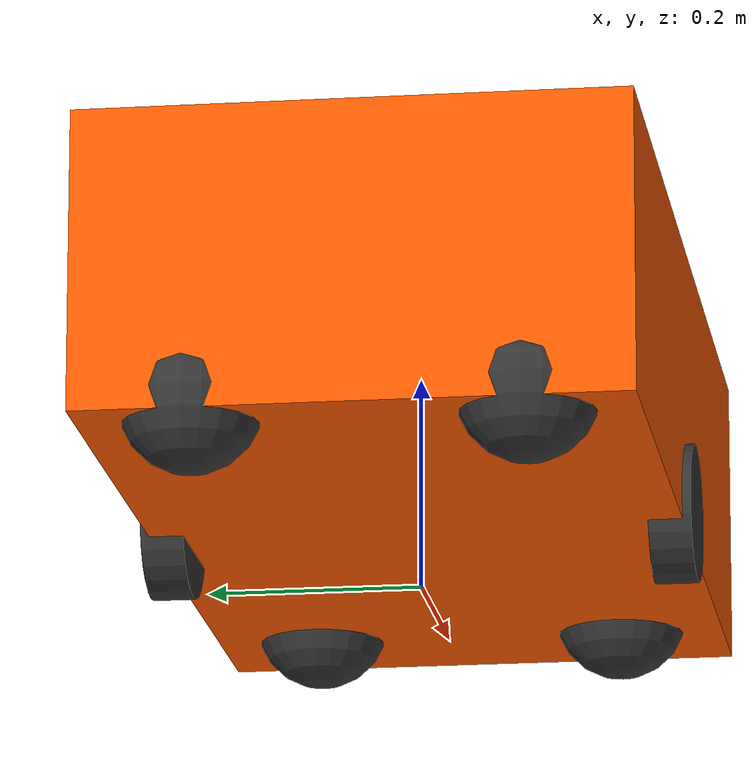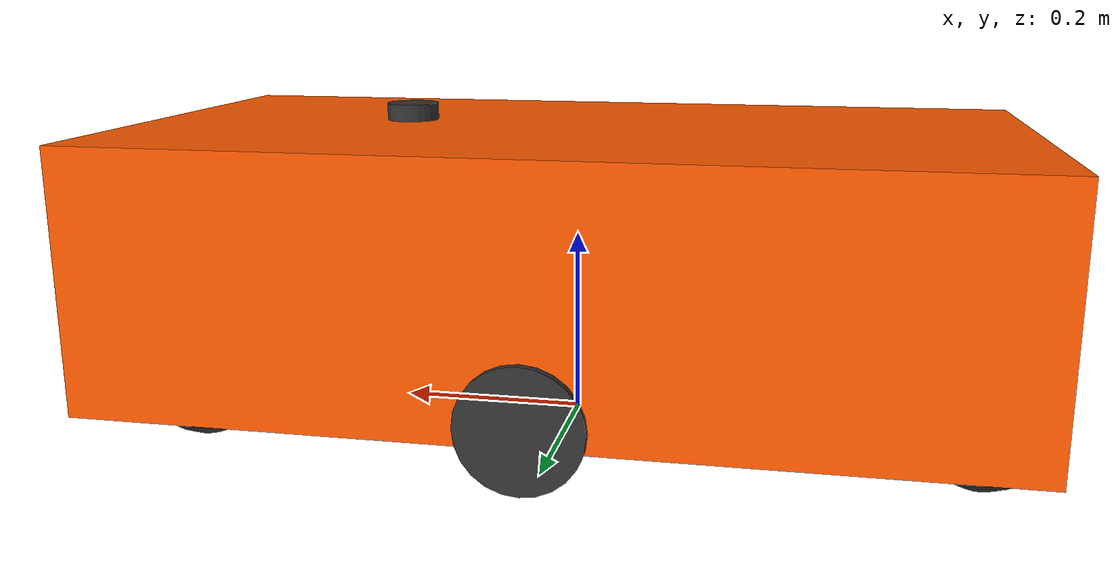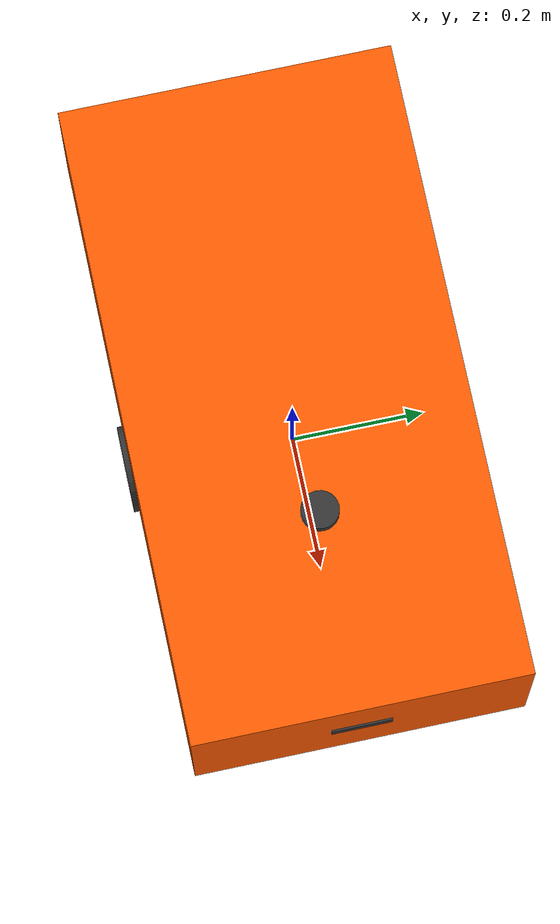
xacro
<?xml version="1.0"?>
<robot name="amr" xmlns:xacro="http://www.ros.org/wiki/xacro"> <!--robot name = AMR-->

<!--Visualization materials-->
<material name="safety_orange">
    <color rgba="1.0 0.35 0.0 1.0"/>
</material>
<material name="dark_grey">
    <color rgba="0.2 0.2 0.2 1.0"/>
</material>

<!--Define dimension wheel-->
<xacro:property name="wheel_diameter" value="0.129"/>
<xacro:property name="wheel_radius" value="${wheel_diameter / 2}"/>
<xacro:property name="wheel_separation" value="0.472"/>
<xacro:property name="wheel_thick" value="0.04"/>

<!--Define dimension base-->
<xacro:property name="base_height" value="0.275"/>
<xacro:property name="base_width" value="0.496"/>
<xacro:property name="base_depth" value="0.951"/>

<!--Define dimension lidar-->
<xacro:property name="lidar_height" value="0.0182"/>
<xacro:property name="lidar_radius" value="0.0278"/>

<!--Define dimension 3Dcamera-->
<xacro:property name="camera_height" value="0.019"/>
<xacro:property name="camera_width" value="0.0898"/>
<xacro:property name="camera_depth" value="0.025"/>

<!--Define position and offset-->
<xacro:property name="base_offset_height" value="${wheel_radius}"/>

<xacro:property name="lidar_x" value="${(base_depth / 2) - 0.290}"/>
<xacro:property name="lidar_z" value="${(base_height - 0.021) + (lidar_height / 2) + 0.0031}"/>

<xacro:property name="camera_x" value="${base_depth / 2}"/>
<xacro:property name="camera_z" value="${(-0.021) + 0.144}"/>

<!--Base footprint-->
<link name="base_footprint"/>
<joint name='joint_base' type='fixed'>
    <parent link="base_footprint"/>
    <child link="base_link"/>
    <origin xyz="0 0 ${base_offset_height}" rpy="0 0 0"/>
</joint>

<!--Base link-->
<link name="base_link">
    <visual>
        <origin xyz="0 0 ${(base_height / 2) - 0.021}" rpy="0 0 0"/>
        <geometry>
            <box size="${base_depth} ${base_width} ${base_height}"/>
        </geometry>
        <material name="safety_orange"/>
    </visual>
</link>

<!--Lidar link-->
<link name="lidar_link">
    <visual>
        <geometry>
            <cylinder radius="${lidar_radius}" length="${lidar_height}"/>
        </geometry>
        <material name="dark_grey"/>
    </visual>
</link>

<!--Lidar joint-->
<joint name="joint_lidar" type="fixed">
    <parent link="base_link"/>
    <child link="lidar_link"/>
    <origin xyz="${lidar_x} 0 ${lidar_z}" rpy="0 0 ${pi}"/>
</joint>

<!--Camera link-->
<link name="camera_link">
    <visual>
        <origin xyz="-0.0095 0 0" rpy="0 0 0"/>
        <geometry>
            <box size="${camera_depth} ${camera_width} ${camera_height}"/>
        </geometry>
        <material name="dark_grey"/>
    </visual>
</link>

<!--Camera joint-->
<joint name="joint_camera" type="fixed">
    <parent link="base_link"/>
    <child link="camera_link"/>
    <origin xyz="${camera_x} 0 ${camera_z}" rpy="0 0 0"/>
</joint>
<!--Camera optical frame-->
<joint name="camera_joint_frame" type="fixed">
    <parent link="camera_link"/>
    <child link="camera_optical_frame"/>
    <origin xyz="0 0 0" rpy="${-pi/2} 0 ${-pi/2}"/>
</joint>
<link name="camera_optical_frame"/>

<joint name="joint_imu" type="fixed">
    <parent link="base_link"/>
    <child link="imu_link"/>
    <origin xyz="0.008 0 0" rpy="0 0 0"/>
</joint>
<link name="imu_link"/>

<!--Drive wheel-->
<xacro:macro name="drive_wheel" params="prefix reflect">
    <!--Drive wheel link-->
    <link name="${prefix}_drive_wheel_link">
        <visual>
            <geometry>
                <cylinder radius="${wheel_radius}" length="${wheel_thick}"/>
            </geometry>
            <material name="dark_grey"/>
        </visual>
    </link>

    <!--Drive wheel joint-->
    <joint name="joint_${prefix}_drive_wheel" type="continuous">
        <parent link="base_link"/>
        <child link="${prefix}_drive_wheel_link"/>
        <origin xyz="0.008 ${reflect * wheel_separation / 2 } 0" rpy="${pi/2} 0 0"/>
        <axis xyz="0 0 1"/>
    </joint>
</xacro:macro>
<xacro:drive_wheel prefix="left" reflect="1"/>
<xacro:drive_wheel prefix="right" reflect="-1"/>

<!--Caster wheel-->
<xacro:macro name="caster_wheel" params="prefix1 prefix2 x_shift y_shift">
    <!--Caster wheel link-->
    <link name="${prefix1}_${prefix2}_caster_wheel_link">
        <visual>
            <geometry>
                <sphere radius="${wheel_radius}"/>
            </geometry>
            <material name="dark_grey"/>
        </visual>
    </link>
    <!--Caster wheel joint-->
    <joint name="joint_${prefix1}_${prefix2}_caster_wheel" type="fixed">
        <parent link="base_link"/>
        <child link="${prefix1}_${prefix2}_caster_wheel_link"/>
        <origin xyz="${x_shift} ${y_shift * 0.148} 0" rpy="0 0 0"/>
    </joint>
</xacro:macro>
<xacro:caster_wheel prefix1="front" prefix2="left" x_shift="0.3725" y_shift="1"/>
<xacro:caster_wheel prefix1="front" prefix2="right" x_shift="0.3725" y_shift="-1"/>
<xacro:caster_wheel prefix1="back" prefix2="left" x_shift="-0.4181" y_shift="1"/>
<xacro:caster_wheel prefix1="back" prefix2="right" x_shift="-0.4181" y_shift="-1"/>
</robot>
